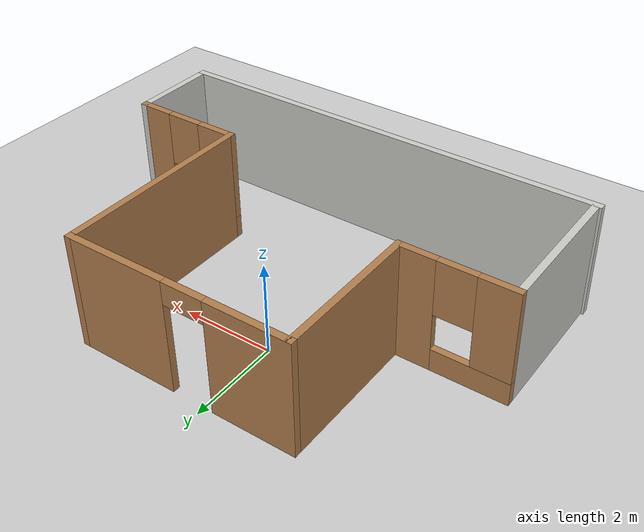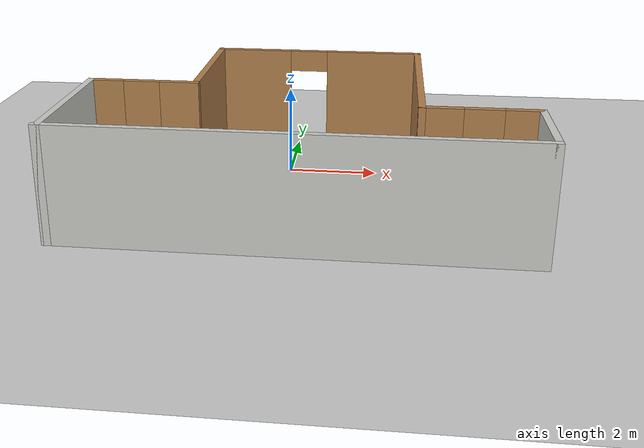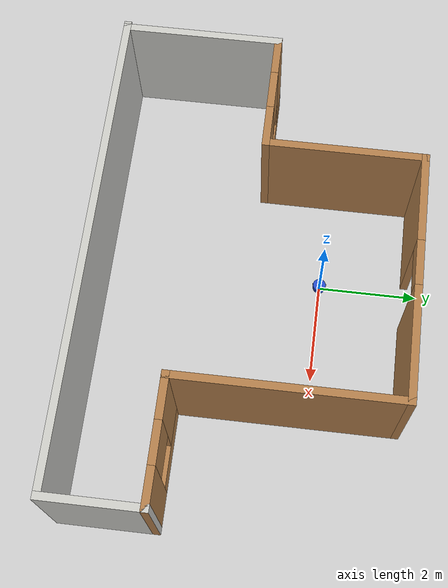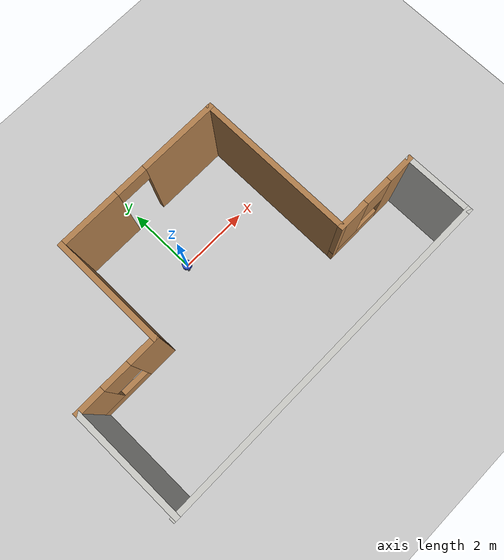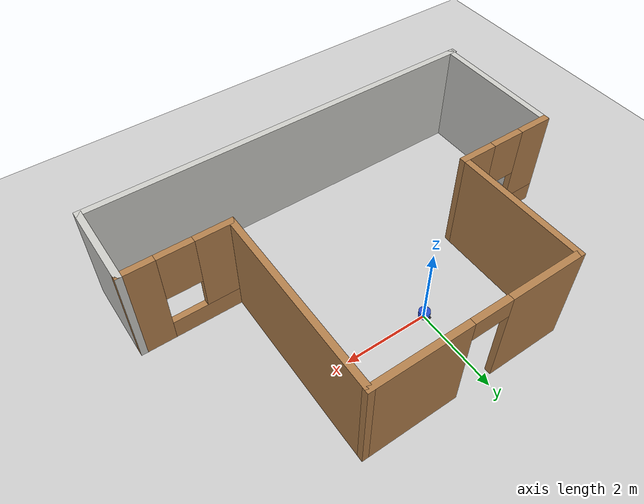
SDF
<sdf version="1.6">
 <world name="default">
  <light name="sun" type="directional">
   <pose>0 0 10 0 -0 0</pose>
   <diffuse>0.8 0.8 0.8 1</diffuse>
   <specular>0.2 0.2 0.2 1</specular>
   <attenuation>
    <range>1000</range>
    <constant>0.9</constant>
    <linear>0.01</linear>
    <quadratic>0.001</quadratic>
   </attenuation>
   <direction>-0.5 0.1 -0.9</direction>
  </light>
  <model name="ground_plane">
   <static>1</static>
   <link name="link">
    <collision name="collision">
     <geometry><plane><normal>0 0 1</normal><size>100 100</size></plane></geometry>
     <surface><friction><ode><mu>100</mu><mu2>50</mu2></ode></friction></surface>
    </collision>
    <visual name="visual">
     <cast_shadows>0</cast_shadows>
     <geometry><plane><normal>0 0 1</normal><size>100 100</size></plane></geometry>
     <material>
      <script><uri>file://media/materials/scripts/gazebo.material</uri><name>Gazebo/Grey</name></script>
     </material>
    </visual>
   </link>
  </model>
  <gravity>0 0 -9.8</gravity>
  <magnetic_field>6e-06 2.3e-05 -4.2e-05</magnetic_field>
  <atmosphere type="adiabatic"/>
  <physics name="default_physics" default="0" type="ode">
   <max_step_size>0.001</max_step_size>
   <real_time_factor>1</real_time_factor>
   <real_time_update_rate>1000</real_time_update_rate>
  </physics>
  <scene><ambient>0.4 0.4 0.4 1</ambient><background>0.7 0.7 0.7 1</background><shadows>1</shadows></scene>
  <audio><device>default</device></audio>
  <spherical_coordinates>
   <surface_model>EARTH_WGS84</surface_model>
   <latitude_deg>0</latitude_deg>
   <longitude_deg>0</longitude_deg>
   <elevation>0</elevation>
   <heading_deg>0</heading_deg>
  </spherical_coordinates>
  <model name="mrobot">
   <link name="base_footprint">
    <inertial>
     <pose>0.001504 0 0.062805 0 -0 0</pose>
     <mass>0.718</mass>
     <inertia>
      <ixx>0.00568332</ixx>
      <ixy>0</ixy>
      <ixz>5.97894e-05</ixz>
      <iyy>0.00581289</iyy>
      <iyz>0</iyz>
      <izz>0.0069648</izz>
     </inertia>
    </inertial>
    <collision name="base_footprint_fixed_joint_lump__base_link_collision">
     <pose>0 0 0.033 0 -0 0</pose>
     <geometry><cylinder><length>0.005</length><radius>0.13</radius></cylinder></geometry>
    </collision>
    <collision name="base_footprint_fixed_joint_lump__front_caster_link_collision_1">
     <pose>0.12 0 0.017 0 -0 0</pose>
     <geometry><sphere><radius>0.016</radius></sphere></geometry>
    </collision>
    <collision name="base_footprint_fixed_joint_lump__plate_1_link_collision_2">
     <pose>0 0 0.103 0 -0 0</pose>
     <geometry><cylinder><length>0.005</length><radius>0.13</radius></cylinder></geometry>
    </collision>
    <collision name="base_footprint_fixed_joint_lump__plate_2_link_collision_3">
     <pose>0 0 0.173 0 -0 0</pose>
     <geometry><cylinder><length>0.005</length><radius>0.13</radius></cylinder></geometry>
    </collision>
    <collision name="base_footprint_fixed_joint_lump__standoff_2in_1_link_collision_4">
     <pose>-0.09 -0.07 0.068 0 -0 0</pose>
     <geometry><box><size>0.01 0.01 0.07</size></box></geometry>
    </collision>
    <collision name="base_footprint_fixed_joint_lump__standoff_2in_5_link_collision_5">
     <pose>-0.09 -0.07 0.138 0 -0 0</pose>
     <geometry><box><size>0.01 0.01 0.07</size></box></geometry>
    </collision>
    <collision name="base_footprint_fixed_joint_lump__standoff_2in_2_link_collision_6">
     <pose>-0.09 0.07 0.068 0 -0 0</pose>
     <geometry><box><size>0.01 0.01 0.07</size></box></geometry>
    </collision>
    <collision name="base_footprint_fixed_joint_lump__standoff_2in_6_link_collision_7">
     <pose>-0.09 0.07 0.138 0 -0 0</pose>
     <geometry><box><size>0.01 0.01 0.07</size></box></geometry>
    </collision>
    <collision name="base_footprint_fixed_joint_lump__standoff_2in_3_link_collision_8">
     <pose>0.06 -0.1 0.068 0 -0 0</pose>
     <geometry><box><size>0.01 0.01 0.07</size></box></geometry>
    </collision>
    <collision name="base_footprint_fixed_joint_lump__standoff_2in_7_link_collision_9">
     <pose>0.06 -0.1 0.138 0 -0 0</pose>
     <geometry><box><size>0.01 0.01 0.07</size></box></geometry>
    </collision>
    <collision name="base_footprint_fixed_joint_lump__standoff_2in_4_link_collision_10">
     <pose>0.06 0.1 0.068 0 -0 0</pose>
     <geometry><box><size>0.01 0.01 0.07</size></box></geometry>
    </collision>
    <collision name="base_footprint_fixed_joint_lump__standoff_2in_8_link_collision_11">
     <pose>0.06 0.1 0.138 0 -0 0</pose>
     <geometry><box><size>0.01 0.01 0.07</size></box></geometry>
    </collision>
    <visual name="base_footprint_visual"><geometry><box><size>0.001 0.001 0.001</size></box></geometry></visual>
    <visual name="base_footprint_fixed_joint_lump__base_link_visual_1">
     <pose>0 0 0.033 0 -0 0</pose>
     <geometry><cylinder><length>0.005</length><radius>0.13</radius></cylinder></geometry>
     <material>
      <script><name>Gazebo/Blue</name><uri>file://media/materials/scripts/gazebo.material</uri></script>
     </material>
    </visual>
    <visual name="base_footprint_fixed_joint_lump__front_caster_link_visual_2">
     <pose>0.12 0 0.017 0 -0 0</pose>
     <geometry><sphere><radius>0.016</radius></sphere></geometry>
     <material>
      <script><name>Gazebo/Black</name><uri>file://media/materials/scripts/gazebo.material</uri></script>
     </material>
    </visual>
    <visual name="base_footprint_fixed_joint_lump__plate_1_link_visual_3">
     <pose>0 0 0.103 0 -0 0</pose>
     <geometry><cylinder><length>0.005</length><radius>0.13</radius></cylinder></geometry>
     <material>
      <script><name>Gazebo/Blue</name><uri>file://media/materials/scripts/gazebo.material</uri></script>
     </material>
    </visual>
    <visual name="base_footprint_fixed_joint_lump__plate_2_link_visual_4">
     <pose>0 0 0.173 0 -0 0</pose>
     <geometry><cylinder><length>0.005</length><radius>0.13</radius></cylinder></geometry>
     <material>
      <script><name>Gazebo/Blue</name><uri>file://media/materials/scripts/gazebo.material</uri></script>
     </material>
    </visual>
    <visual name="base_footprint_fixed_joint_lump__standoff_2in_1_link_visual_5">
     <pose>-0.09 -0.07 0.068 0 -0 0</pose>
     <geometry><box><size>0.01 0.01 0.07</size></box></geometry>
    </visual>
    <visual name="base_footprint_fixed_joint_lump__standoff_2in_5_link_visual_6">
     <pose>-0.09 -0.07 0.138 0 -0 0</pose>
     <geometry><box><size>0.01 0.01 0.07</size></box></geometry>
    </visual>
    <visual name="base_footprint_fixed_joint_lump__standoff_2in_2_link_visual_7">
     <pose>-0.09 0.07 0.068 0 -0 0</pose>
     <geometry><box><size>0.01 0.01 0.07</size></box></geometry>
    </visual>
    <visual name="base_footprint_fixed_joint_lump__standoff_2in_6_link_visual_8">
     <pose>-0.09 0.07 0.138 0 -0 0</pose>
     <geometry><box><size>0.01 0.01 0.07</size></box></geometry>
    </visual>
    <visual name="base_footprint_fixed_joint_lump__standoff_2in_3_link_visual_9">
     <pose>0.06 -0.1 0.068 0 -0 0</pose>
     <geometry><box><size>0.01 0.01 0.07</size></box></geometry>
    </visual>
    <visual name="base_footprint_fixed_joint_lump__standoff_2in_7_link_visual_10">
     <pose>0.06 -0.1 0.138 0 -0 0</pose>
     <geometry><box><size>0.01 0.01 0.07</size></box></geometry>
    </visual>
    <visual name="base_footprint_fixed_joint_lump__standoff_2in_4_link_visual_11">
     <pose>0.06 0.1 0.068 0 -0 0</pose>
     <geometry><box><size>0.01 0.01 0.07</size></box></geometry>
    </visual>
    <visual name="base_footprint_fixed_joint_lump__standoff_2in_8_link_visual_12">
     <pose>0.06 0.1 0.138 0 -0 0</pose>
     <geometry><box><size>0.01 0.01 0.07</size></box></geometry>
    </visual>
   </link>
   <link name="wheel_left_link">
    <pose>-0.05 -0.13 0.033 0 -0 0</pose>
    <inertial>
     <mass>0.1</mass>
     <inertia>
      <ixx>2.96333e-05</ixx>
      <ixy>0</ixy>
      <ixz>0</ixz>
      <iyy>2.96333e-05</iyy>
      <iyz>0</iyz>
      <izz>5.445e-05</izz>
     </inertia>
    </inertial>
    <collision name="wheel_left_link_collision">
     <pose>0 0 0 1.5708 -0 0</pose>
     <geometry><cylinder><length>0.017</length><radius>0.033</radius></cylinder></geometry>
    </collision>
    <visual name="wheel_left_link_visual">
     <pose>0 0 0 1.5708 -0 0</pose>
     <geometry><cylinder><length>0.017</length><radius>0.033</radius></cylinder></geometry>
     <material>
      <script><name>Gazebo/Black</name><uri>file://media/materials/scripts/gazebo.material</uri></script>
     </material>
    </visual>
   </link>
   <joint name="base_to_wheel_left_joint" type="revolute">
    <child>wheel_left_link</child>
    <parent>base_footprint</parent>
    <axis>
     <xyz>0 1 0</xyz>
     <limit><lower>-1e+16</lower><upper>1e+16</upper></limit>
     <dynamics><spring_reference>0</spring_reference><spring_stiffness>0</spring_stiffness></dynamics>
     <use_parent_model_frame>1</use_parent_model_frame>
    </axis>
   </joint>
   <link name="wheel_right_link">
    <pose>-0.05 0.13 0.033 0 -0 0</pose>
    <inertial>
     <mass>0.1</mass>
     <inertia>
      <ixx>2.96333e-05</ixx>
      <ixy>0</ixy>
      <ixz>0</ixz>
      <iyy>2.96333e-05</iyy>
      <iyz>0</iyz>
      <izz>5.445e-05</izz>
     </inertia>
    </inertial>
    <collision name="wheel_right_link_collision">
     <pose>0 0 0 1.5708 -0 0</pose>
     <geometry><cylinder><length>0.017</length><radius>0.033</radius></cylinder></geometry>
    </collision>
    <visual name="wheel_right_link_visual">
     <pose>0 0 0 1.5708 -0 0</pose>
     <geometry><cylinder><length>0.017</length><radius>0.033</radius></cylinder></geometry>
     <material>
      <script><name>Gazebo/Black</name><uri>file://media/materials/scripts/gazebo.material</uri></script>
     </material>
    </visual>
   </link>
   <joint name="base_to_wheel_right_joint" type="revolute">
    <child>wheel_right_link</child>
    <parent>base_footprint</parent>
    <axis>
     <xyz>0 1 0</xyz>
     <limit><lower>-1e+16</lower><upper>1e+16</upper></limit>
     <dynamics><spring_reference>0</spring_reference><spring_stiffness>0</spring_stiffness></dynamics>
     <use_parent_model_frame>1</use_parent_model_frame>
    </axis>
   </joint>
   <static>0</static>
   <plugin name="differential_drive_controller" filename="libgazebo_ros_diff_drive.so">
    <rosDebugLevel>Debug</rosDebugLevel>
    <publishWheelTF>1</publishWheelTF>
    <robotNamespace>/</robotNamespace>
    <publishTf>1</publishTf>
    <publishWheelJointState>1</publishWheelJointState>
    <alwaysOn>1</alwaysOn>
    <updateRate>100.0</updateRate>
    <legacyMode>1</legacyMode>
    <leftJoint>base_to_wheel_left_joint</leftJoint>
    <rightJoint>base_to_wheel_right_joint</rightJoint>
    <wheelSeparation>0.26</wheelSeparation>
    <wheelDiameter>0.066</wheelDiameter>
    <broadcastTF>1</broadcastTF>
    <wheelTorque>30</wheelTorque>
    <wheelAcceleration>1.8</wheelAcceleration>
    <commandTopic>cmd_vel</commandTopic>
    <odometryFrame>odom</odometryFrame>
    <odometryTopic>odom</odometryTopic>
    <robotBaseFrame>base_footprint</robotBaseFrame>
   </plugin>
   <pose>-0.014308 -0.000857 -0.000294 0 0.005884 -0.003496</pose>
  </model>
  <model name="wall">
   <pose>0.46783 -1.35111 0 0 -0 0</pose>
   <link name="Wall_0">
    <collision name="Wall_0_Collision">
     <geometry><box><size>9.75 0.15 2.5</size></box></geometry>
     <pose>0 0 1.25 0 -0 0</pose>
    </collision>
    <visual name="Wall_0_Visual">
     <pose>0 0 1.25 0 -0 0</pose>
     <geometry><box><size>9.75 0.15 2.5</size></box></geometry>
     <material>
      <script><uri>file://media/materials/scripts/gazebo.material</uri><name>Gazebo/CeilingTiled</name></script>
      <ambient>1 1 1 1</ambient>
     </material>
     <meta><layer>0</layer></meta>
    </visual>
    <pose>-0 -3.1 0 0 -0 0</pose>
   </link>
   <link name="Wall_1">
    <collision name="Wall_1_Collision">
     <geometry><box><size>2 0.15 2.5</size></box></geometry>
     <pose>0 0 1.25 0 -0 0</pose>
    </collision>
    <visual name="Wall_1_Visual">
     <pose>0 0 1.25 0 -0 0</pose>
     <geometry><box><size>2 0.15 2.5</size></box></geometry>
     <material>
      <script><uri>file://media/materials/scripts/gazebo.material</uri><name>Gazebo/CeilingTiled</name></script>
      <ambient>1 1 1 1</ambient>
     </material>
     <meta><layer>0</layer></meta>
    </visual>
    <pose>4.8 -2.175 0 0 -0 1.5708</pose>
   </link>
   <link name="Wall_10">
    <collision name="Wall_10_Collision">
     <geometry><box><size>3.25 0.15 2.5</size></box></geometry>
     <pose>0 0 1.25 0 -0 0</pose>
    </collision>
    <visual name="Wall_10_Visual">
     <pose>0 0 1.25 0 -0 0</pose>
     <geometry><box><size>3.25 0.15 2.5</size></box></geometry>
     <material>
      <script><uri>file://media/materials/scripts/gazebo.material</uri><name>Gazebo/CeilingTiled</name></script>
      <ambient>1 1 1 1</ambient>
     </material>
     <meta><layer>0</layer></meta>
    </visual>
    <pose>-4.75 -1.55 0 0 -0 -1.5708</pose>
   </link>
   <link name="Wall_2">
    <pose>3.625 -1.25 0 0 -0 3.14159</pose>
    <visual name="Wall_2_Visual_0">
     <pose>-0.849078 0 1.25 0 -0 0</pose>
     <geometry><box><size>0.801844 0.15 2.5</size></box></geometry>
     <material>
      <script><uri>file://media/materials/scripts/gazebo.material</uri><name>Gazebo/Wood</name></script>
      <ambient>1 1 1 1</ambient>
     </material>
     <meta><layer>0</layer></meta>
    </visual>
    <collision name="Wall_2_Collision_0">
     <geometry><box><size>0.801844 0.15 2.5</size></box></geometry>
     <pose>-0.849078 0 1.25 0 -0 0</pose>
    </collision>
    <visual name="Wall_2_Visual_1">
     <pose>0.400922 0 0.25 0 -0 0</pose>
     <geometry><box><size>1.69816 0.15 0.5</size></box></geometry>
     <material>
      <script><uri>file://media/materials/scripts/gazebo.material</uri><name>Gazebo/Wood</name></script>
      <ambient>1 1 1 1</ambient>
     </material>
     <meta><layer>0</layer></meta>
    </visual>
    <collision name="Wall_2_Collision_1">
     <geometry><box><size>1.69816 0.15 0.5</size></box></geometry>
     <pose>0.400922 0 0.25 0 -0 0</pose>
    </collision>
    <visual name="Wall_2_Visual_2">
     <pose>0.800922 0 1.5 0 -0 0</pose>
     <geometry><box><size>0.898156 0.15 2</size></box></geometry>
     <material>
      <script><uri>file://media/materials/scripts/gazebo.material</uri><name>Gazebo/Wood</name></script>
      <ambient>1 1 1 1</ambient>
     </material>
     <meta><layer>0</layer></meta>
    </visual>
    <collision name="Wall_2_Collision_2">
     <geometry><box><size>0.898156 0.15 2</size></box></geometry>
     <pose>0.800922 0 1.5 0 -0 0</pose>
    </collision>
    <visual name="Wall_2_Visual_3">
     <pose>-0.048156 0 1.9 0 -0 0</pose>
     <geometry><box><size>0.8 0.15 1.2</size></box></geometry>
     <material>
      <script><uri>file://media/materials/scripts/gazebo.material</uri><name>Gazebo/Wood</name></script>
      <ambient>1 1 1 1</ambient>
     </material>
     <meta><layer>0</layer></meta>
    </visual>
    <collision name="Wall_2_Collision_3">
     <geometry><box><size>0.8 0.15 1.2</size></box></geometry>
     <pose>-0.048156 0 1.9 0 -0 0</pose>
    </collision>
   </link>
   <link name="Wall_5">
    <collision name="Wall_5_Collision">
     <geometry><box><size>4.5 0.15 2.5</size></box></geometry>
     <pose>0 0 1.25 0 -0 0</pose>
    </collision>
    <visual name="Wall_5_Visual">
     <pose>0 0 1.25 0 -0 0</pose>
     <geometry><box><size>4.5 0.15 2.5</size></box></geometry>
     <material>
      <script><uri>file://media/materials/scripts/gazebo.material</uri><name>Gazebo/Wood</name></script>
      <ambient>1 1 1 1</ambient>
     </material>
     <meta><layer>0</layer></meta>
    </visual>
    <pose>2.45 0.925 0 0 -0 1.5708</pose>
   </link>
   <link name="Wall_6">
    <pose>0.025 3.1 0 0 -0 3.14159</pose>
    <visual name="Wall_6_Visual_0">
     <pose>-1.35996 0 1.25 0 -0 0</pose>
     <geometry><box><size>2.28008 0.15 2.5</size></box></geometry>
     <material>
      <script><uri>file://media/materials/scripts/gazebo.material</uri><name>Gazebo/Wood</name></script>
      <ambient>1 1 1 1</ambient>
     </material>
     <meta><layer>0</layer></meta>
    </visual>
    <collision name="Wall_6_Collision_0">
     <geometry><box><size>2.28008 0.15 2.5</size></box></geometry>
     <pose>-1.35996 0 1.25 0 -0 0</pose>
    </collision>
    <visual name="Wall_6_Visual_1">
     <pose>1.59004 0 1.25 0 -0 0</pose>
     <geometry><box><size>1.81993 0.15 2.5</size></box></geometry>
     <material>
      <script><uri>file://media/materials/scripts/gazebo.material</uri><name>Gazebo/Wood</name></script>
      <ambient>1 1 1 1</ambient>
     </material>
     <meta><layer>0</layer></meta>
    </visual>
    <collision name="Wall_6_Collision_1">
     <geometry><box><size>1.81993 0.15 2.5</size></box></geometry>
     <pose>1.59004 0 1.25 0 -0 0</pose>
    </collision>
    <visual name="Wall_6_Visual_2">
     <pose>0.230075 0 2.25 0 -0 0</pose>
     <geometry><box><size>0.9 0.15 0.5</size></box></geometry>
     <material>
      <script><uri>file://media/materials/scripts/gazebo.material</uri><name>Gazebo/Wood</name></script>
      <ambient>1 1 1 1</ambient>
     </material>
     <meta><layer>0</layer></meta>
    </visual>
    <collision name="Wall_6_Collision_2">
     <geometry><box><size>0.9 0.15 0.5</size></box></geometry>
     <pose>0.230075 0 2.25 0 -0 0</pose>
    </collision>
   </link>
   <link name="Wall_7">
    <collision name="Wall_7_Collision">
     <geometry><box><size>3.25 0.15 2.5</size></box></geometry>
     <pose>0 0 1.25 0 -0 0</pose>
    </collision>
    <visual name="Wall_7_Visual">
     <pose>0 0 1.25 0 -0 0</pose>
     <geometry><box><size>3.25 0.15 2.5</size></box></geometry>
     <material>
      <script><uri>file://media/materials/scripts/gazebo.material</uri><name>Gazebo/Wood</name></script>
      <ambient>1 1 1 1</ambient>
     </material>
     <meta><layer>0</layer></meta>
    </visual>
    <pose>-2.4 1.55 0 0 -0 -1.5708</pose>
   </link>
   <link name="Wall_9">
    <pose>-3.575 0 0 0 -0 3.14159</pose>
    <visual name="Wall_9_Visual_0">
     <pose>-0.814187 0 1.25 0 -0 0</pose>
     <geometry><box><size>0.871627 0.15 2.5</size></box></geometry>
     <material>
      <script><uri>file://media/materials/scripts/gazebo.material</uri><name>Gazebo/Wood</name></script>
      <ambient>1 1 1 1</ambient>
     </material>
     <meta><layer>0</layer></meta>
    </visual>
    <collision name="Wall_9_Collision_0">
     <geometry><box><size>0.871627 0.15 2.5</size></box></geometry>
     <pose>-0.814187 0 1.25 0 -0 0</pose>
    </collision>
    <visual name="Wall_9_Visual_1">
     <pose>0.435813 0 0.25 0 -0 0</pose>
     <geometry><box><size>1.62837 0.15 0.5</size></box></geometry>
     <material>
      <script><uri>file://media/materials/scripts/gazebo.material</uri><name>Gazebo/Wood</name></script>
      <ambient>1 1 1 1</ambient>
     </material>
     <meta><layer>0</layer></meta>
    </visual>
    <collision name="Wall_9_Collision_1">
     <geometry><box><size>1.62837 0.15 0.5</size></box></geometry>
     <pose>0.435813 0 0.25 0 -0 0</pose>
    </collision>
    <visual name="Wall_9_Visual_2">
     <pose>0.835813 0 1.5 0 -0 0</pose>
     <geometry><box><size>0.828373 0.15 2</size></box></geometry>
     <material>
      <script><uri>file://media/materials/scripts/gazebo.material</uri><name>Gazebo/Wood</name></script>
      <ambient>1 1 1 1</ambient>
     </material>
     <meta><layer>0</layer></meta>
    </visual>
    <collision name="Wall_9_Collision_2">
     <geometry><box><size>0.828373 0.15 2</size></box></geometry>
     <pose>0.835813 0 1.5 0 -0 0</pose>
    </collision>
    <visual name="Wall_9_Visual_3">
     <pose>0.021627 0 1.9 0 -0 0</pose>
     <geometry><box><size>0.8 0.15 1.2</size></box></geometry>
     <material>
      <script><uri>file://media/materials/scripts/gazebo.material</uri><name>Gazebo/Wood</name></script>
      <ambient>1 1 1 1</ambient>
     </material>
     <meta><layer>0</layer></meta>
    </visual>
    <collision name="Wall_9_Collision_3">
     <geometry><box><size>0.8 0.15 1.2</size></box></geometry>
     <pose>0.021627 0 1.9 0 -0 0</pose>
    </collision>
   </link>
   <static>1</static>
  </model>
 </world>
</sdf>
